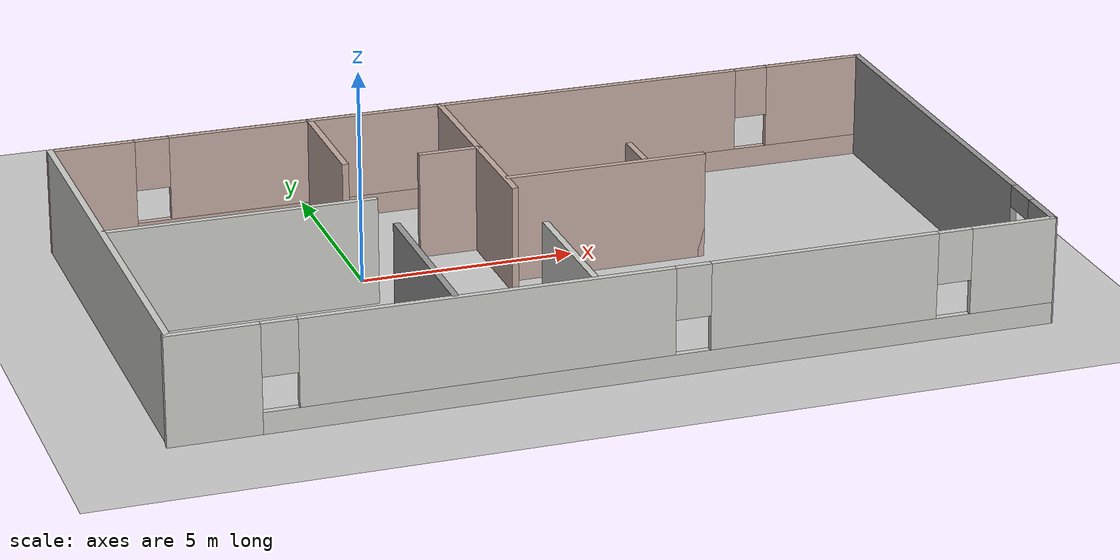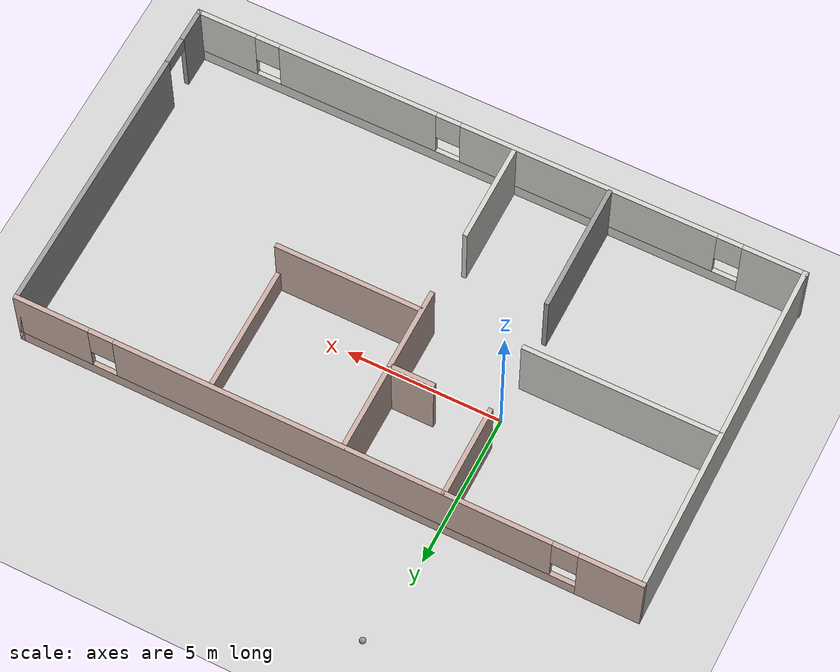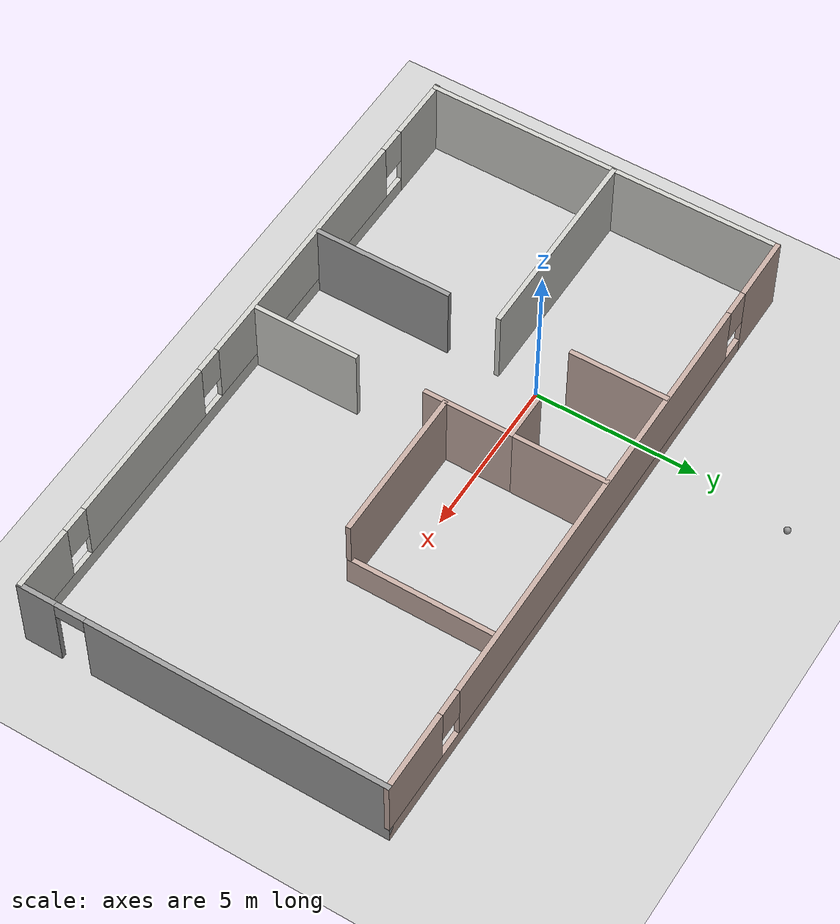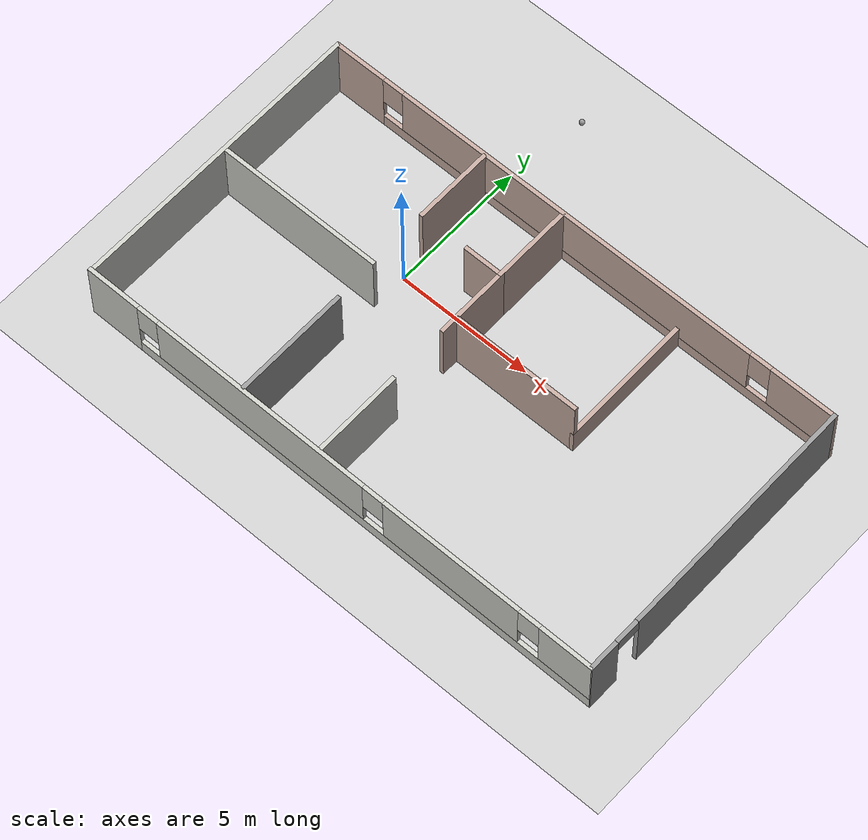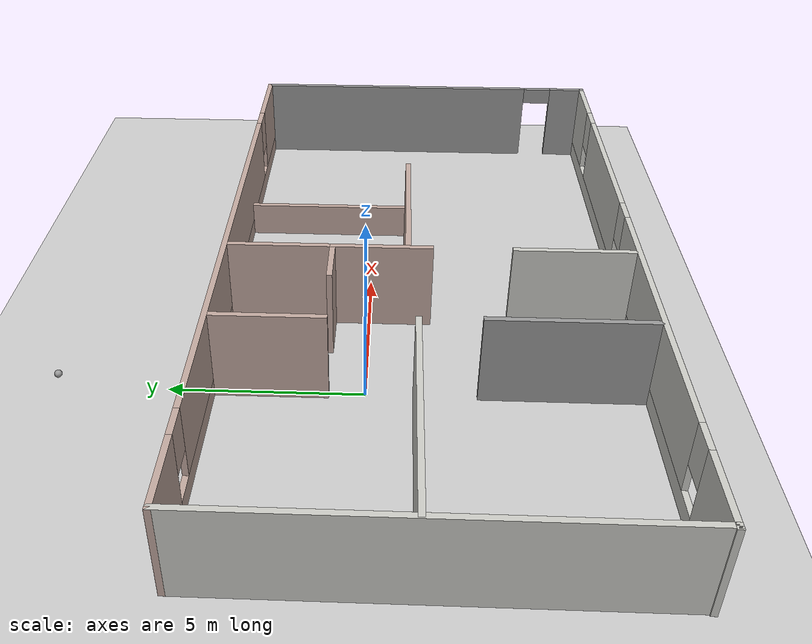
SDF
<sdf version="1.6">
 <world name="default">
  <model name="ground_plane">
   <static>1</static>
   <link name="link">
    <collision name="collision">
     <geometry><plane><normal>0 0 1</normal><size>100 100</size></plane></geometry>
     <surface><friction><ode><mu>100</mu><mu2>50</mu2></ode></friction></surface>
    </collision>
    <visual name="visual">
     <cast_shadows>0</cast_shadows>
     <geometry><plane><normal>0 0 1</normal><size>100 100</size></plane></geometry>
     <material>
      <script><uri>file://media/materials/scripts/gazebo.material</uri><name>Gazebo/Grey</name></script>
     </material>
    </visual>
   </link>
  </model>
  <model name="Building1">
   <pose>3.71092 -1.61304 0 0 -0 0</pose>
   <link name="Wall_0">
    <collision name="Wall_0_Collision">
     <geometry><box><size>11.1055 0.15 2.5</size></box></geometry>
     <pose>0 0 1.25 0 -0 0</pose>
    </collision>
    <visual name="Wall_0_Visual">
     <pose>0 0 1.25 0 -0 0</pose>
     <geometry><box><size>11.1055 0.15 2.5</size></box></geometry>
     <material>
      <script><uri>file://media/materials/scripts/gazebo.material</uri><name>Gazebo/CeilingTiled</name></script>
      <ambient>1 1 1 1</ambient>
     </material>
     <meta><layer>0</layer></meta>
    </visual>
    <pose>-9.90728 -5.4e-05 0 0 0 -1.5708</pose>
   </link>
   <link name="Wall_1">
    <pose>-0.01759 -5.47777 0 0 -0 5e-06</pose>
    <visual name="Wall_1_Visual_0">
     <pose>-8.96838 0 1.25 0 -0 0</pose>
     <geometry><box><size>2.06298 0.15 2.5</size></box></geometry>
     <material>
      <script><uri>file://media/materials/scripts/gazebo.material</uri><name>Gazebo/CeilingTiled</name></script>
      <ambient>1 1 1 1</ambient>
     </material>
     <meta><layer>0</layer></meta>
    </visual>
    <collision name="Wall_1_Collision_0">
     <geometry><box><size>2.06298 0.15 2.5</size></box></geometry>
     <pose>-8.96838 0 1.25 0 -0 0</pose>
    </collision>
    <visual name="Wall_1_Visual_1">
     <pose>1.03149 0 0.25 0 -0 0</pose>
     <geometry><box><size>17.9368 0.15 0.5</size></box></geometry>
     <material>
      <script><uri>file://media/materials/scripts/gazebo.material</uri><name>Gazebo/CeilingTiled</name></script>
      <ambient>1 1 1 1</ambient>
     </material>
     <meta><layer>0</layer></meta>
    </visual>
    <collision name="Wall_1_Collision_1">
     <geometry><box><size>17.9368 0.15 0.5</size></box></geometry>
     <pose>1.03149 0 0.25 0 -0 0</pose>
    </collision>
    <visual name="Wall_1_Visual_2">
     <pose>-2.98124 0 1.5 0 -0 0</pose>
     <geometry><box><size>8.3113 0.15 2</size></box></geometry>
     <material>
      <script><uri>file://media/materials/scripts/gazebo.material</uri><name>Gazebo/CeilingTiled</name></script>
      <ambient>1 1 1 1</ambient>
     </material>
     <meta><layer>0</layer></meta>
    </visual>
    <collision name="Wall_1_Collision_2">
     <geometry><box><size>8.3113 0.15 2</size></box></geometry>
     <pose>-2.98124 0 1.5 0 -0 0</pose>
    </collision>
    <visual name="Wall_1_Visual_3">
     <pose>4.59979 0 1.5 0 -0 0</pose>
     <geometry><box><size>5.25075 0.15 2</size></box></geometry>
     <material>
      <script><uri>file://media/materials/scripts/gazebo.material</uri><name>Gazebo/CeilingTiled</name></script>
      <ambient>1 1 1 1</ambient>
     </material>
     <meta><layer>0</layer></meta>
    </visual>
    <collision name="Wall_1_Collision_3">
     <geometry><box><size>5.25075 0.15 2</size></box></geometry>
     <pose>4.59979 0 1.5 0 -0 0</pose>
    </collision>
    <visual name="Wall_1_Visual_4">
     <pose>9.01252 0 1.5 0 -0 0</pose>
     <geometry><box><size>1.97471 0.15 2</size></box></geometry>
     <material>
      <script><uri>file://media/materials/scripts/gazebo.material</uri><name>Gazebo/CeilingTiled</name></script>
      <ambient>1 1 1 1</ambient>
     </material>
     <meta><layer>0</layer></meta>
    </visual>
    <collision name="Wall_1_Collision_4">
     <geometry><box><size>1.97471 0.15 2</size></box></geometry>
     <pose>9.01252 0 1.5 0 -0 0</pose>
    </collision>
    <visual name="Wall_1_Visual_5">
     <pose>-7.53689 0 1.9 0 -0 0</pose>
     <geometry><box><size>0.8 0.15 1.2</size></box></geometry>
     <material>
      <script><uri>file://media/materials/scripts/gazebo.material</uri><name>Gazebo/CeilingTiled</name></script>
      <ambient>1 1 1 1</ambient>
     </material>
     <meta><layer>0</layer></meta>
    </visual>
    <collision name="Wall_1_Collision_5">
     <geometry><box><size>0.8 0.15 1.2</size></box></geometry>
     <pose>-7.53689 0 1.9 0 -0 0</pose>
    </collision>
    <visual name="Wall_1_Visual_6">
     <pose>1.57441 0 1.9 0 -0 0</pose>
     <geometry><box><size>0.8 0.15 1.2</size></box></geometry>
     <material>
      <script><uri>file://media/materials/scripts/gazebo.material</uri><name>Gazebo/CeilingTiled</name></script>
      <ambient>1 1 1 1</ambient>
     </material>
     <meta><layer>0</layer></meta>
    </visual>
    <collision name="Wall_1_Collision_6">
     <geometry><box><size>0.8 0.15 1.2</size></box></geometry>
     <pose>1.57441 0 1.9 0 -0 0</pose>
    </collision>
    <visual name="Wall_1_Visual_7">
     <pose>7.62516 0 1.9 0 -0 0</pose>
     <geometry><box><size>0.8 0.15 1.2</size></box></geometry>
     <material>
      <script><uri>file://media/materials/scripts/gazebo.material</uri><name>Gazebo/CeilingTiled</name></script>
      <ambient>1 1 1 1</ambient>
     </material>
     <meta><layer>0</layer></meta>
    </visual>
    <collision name="Wall_1_Collision_7">
     <geometry><box><size>0.8 0.15 1.2</size></box></geometry>
     <pose>7.62516 0 1.9 0 -0 0</pose>
    </collision>
   </link>
   <link name="Wall_10">
    <collision name="Wall_10_Collision">
     <geometry><box><size>4.25 0.15 2.5</size></box></geometry>
     <pose>0 0 1.25 0 -0 0</pose>
    </collision>
    <visual name="Wall_10_Visual">
     <pose>0 0 1.25 0 -0 0</pose>
     <geometry><box><size>4.25 0.15 2.5</size></box></geometry>
     <material>
      <script><uri>file://media/materials/scripts/gazebo.material</uri><name>Gazebo/Grey</name></script>
      <ambient>1 1 1 1</ambient>
     </material>
     <meta><layer>0</layer></meta>
    </visual>
    <pose>-3.71999 -3.32433 0 0 0 -1.5708</pose>
   </link>
   <link name="Wall_12">
    <collision name="Wall_12_Collision">
     <geometry><box><size>3 0.15 2.5</size></box></geometry>
     <pose>0 0 1.25 0 -0 0</pose>
    </collision>
    <visual name="Wall_12_Visual">
     <pose>0 0 1.25 0 -0 0</pose>
     <geometry><box><size>3 0.15 2.5</size></box></geometry>
     <material>
      <script><uri>file://media/materials/scripts/gazebo.material</uri><name>Gazebo/Grey</name></script>
      <ambient>0.760784 0.662745 0.627451 1</ambient>
     </material>
     <meta><layer>0</layer></meta>
    </visual>
    <pose>-0.624261 4.01982 0 0 0 -1.5708</pose>
   </link>
   <link name="Wall_13">
    <collision name="Wall_13_Collision">
     <geometry><box><size>1.5 0.15 2.5</size></box></geometry>
     <pose>0 0 1.25 0 -0 0</pose>
    </collision>
    <visual name="Wall_13_Visual">
     <pose>0 0 1.25 0 -0 0</pose>
     <geometry><box><size>1.5 0.15 2.5</size></box></geometry>
     <material>
      <script><uri>file://media/materials/scripts/gazebo.material</uri><name>Gazebo/Grey</name></script>
      <ambient>0.760784 0.662745 0.627451 1</ambient>
     </material>
     <meta><layer>0</layer></meta>
    </visual>
    <pose>-1.29926 2.59482 0 0 -0 3.14159</pose>
   </link>
   <link name="Wall_15">
    <collision name="Wall_15_Collision">
     <geometry><box><size>2.75 0.15 2.5</size></box></geometry>
     <pose>0 0 1.25 0 -0 0</pose>
    </collision>
    <visual name="Wall_15_Visual">
     <pose>0 0 1.25 0 -0 0</pose>
     <geometry><box><size>2.75 0.15 2.5</size></box></geometry>
     <material>
      <script><uri>file://media/materials/scripts/gazebo.material</uri><name>Gazebo/Grey</name></script>
      <ambient>0.760784 0.662745 0.627451 1</ambient>
     </material>
     <meta><layer>0</layer></meta>
    </visual>
    <pose>-0.624261 1.29482 0 0 0 -1.5708</pose>
   </link>
   <link name="Wall_17">
    <collision name="Wall_17_Collision">
     <geometry><box><size>3.25 0.15 2.5</size></box></geometry>
     <pose>0 0 1.25 0 -0 0</pose>
    </collision>
    <visual name="Wall_17_Visual">
     <pose>0 0 1.25 0 -0 0</pose>
     <geometry><box><size>3.25 0.15 2.5</size></box></geometry>
     <material>
      <script><uri>file://media/materials/scripts/gazebo.material</uri><name>Gazebo/CeilingTiled</name></script>
      <ambient>1 1 1 1</ambient>
     </material>
     <meta><layer>0</layer></meta>
    </visual>
    <pose>-0.624261 -3.78915 0 0 0 -1.5708</pose>
   </link>
   <link name="Wall_19">
    <collision name="Wall_19_Collision">
     <geometry><box><size>4.75 0.15 2.5</size></box></geometry>
     <pose>0 0 1.25 0 -0 0</pose>
    </collision>
    <visual name="Wall_19_Visual">
     <pose>0 0 1.25 0 -0 0</pose>
     <geometry><box><size>4.75 0.15 2.5</size></box></geometry>
     <material>
      <script><uri>file://media/materials/scripts/gazebo.material</uri><name>Gazebo/Grey</name></script>
      <ambient>0.760784 0.662745 0.627451 1</ambient>
     </material>
     <meta><layer>0</layer></meta>
    </visual>
    <pose>1.74646 0.589822 0 0 -0 0</pose>
   </link>
   <link name="Wall_2">
    <pose>9.94246 5.4e-05 0 0 -0 1.5708</pose>
    <visual name="Wall_2_Visual_0">
     <pose>-4.96793 0 1.25 0 -0 0</pose>
     <geometry><box><size>1.16968 0.15 2.5</size></box></geometry>
     <material>
      <script><uri>file://media/materials/scripts/gazebo.material</uri><name>Gazebo/Grey</name></script>
      <ambient>1 1 1 1</ambient>
     </material>
     <meta><layer>0</layer></meta>
    </visual>
    <collision name="Wall_2_Collision_0">
     <geometry><box><size>1.16968 0.15 2.5</size></box></geometry>
     <pose>-4.96793 0 1.25 0 -0 0</pose>
    </collision>
    <visual name="Wall_2_Visual_1">
     <pose>1.03484 0 1.25 0 -0 0</pose>
     <geometry><box><size>9.03585 0.15 2.5</size></box></geometry>
     <material>
      <script><uri>file://media/materials/scripts/gazebo.material</uri><name>Gazebo/Grey</name></script>
      <ambient>1 1 1 1</ambient>
     </material>
     <meta><layer>0</layer></meta>
    </visual>
    <collision name="Wall_2_Collision_1">
     <geometry><box><size>9.03585 0.15 2.5</size></box></geometry>
     <pose>1.03484 0 1.25 0 -0 0</pose>
    </collision>
    <visual name="Wall_2_Visual_2">
     <pose>-3.93309 0 2.25 0 -0 0</pose>
     <geometry><box><size>0.9 0.15 0.5</size></box></geometry>
     <material>
      <script><uri>file://media/materials/scripts/gazebo.material</uri><name>Gazebo/Grey</name></script>
      <ambient>1 1 1 1</ambient>
     </material>
     <meta><layer>0</layer></meta>
    </visual>
    <collision name="Wall_2_Collision_2">
     <geometry><box><size>0.9 0.15 0.5</size></box></geometry>
     <pose>-3.93309 0 2.25 0 -0 0</pose>
    </collision>
   </link>
   <link name="Wall_20">
    <collision name="Wall_20_Collision">
     <geometry><box><size>5 0.15 1</size></box></geometry>
     <pose>0 0 0.5 0 -0 0</pose>
    </collision>
    <visual name="Wall_20_Visual">
     <pose>0 0 0.5 0 -0 0</pose>
     <geometry><box><size>5 0.15 1</size></box></geometry>
     <material>
      <script><uri>file://media/materials/scripts/gazebo.material</uri><name>Gazebo/Grey</name></script>
      <ambient>0.760784 0.662745 0.627451 1</ambient>
     </material>
     <meta><layer>0</layer></meta>
    </visual>
    <pose>4.04646 3.01482 0 0 -0 1.5708</pose>
   </link>
   <link name="Wall_4">
    <pose>0.017589 5.47777 0 0 -0 5e-06</pose>
    <visual name="Wall_4_Visual_0">
     <pose>-8.98597 0 1.25 0 -0 0</pose>
     <geometry><box><size>2.0278 0.15 2.5</size></box></geometry>
     <material>
      <script><uri>file://media/materials/scripts/gazebo.material</uri><name>Gazebo/Grey</name></script>
      <ambient>0.760784 0.662745 0.627451 1</ambient>
     </material>
     <meta><layer>0</layer></meta>
    </visual>
    <collision name="Wall_4_Collision_0">
     <geometry><box><size>2.0278 0.15 2.5</size></box></geometry>
     <pose>-8.98597 0 1.25 0 -0 0</pose>
    </collision>
    <visual name="Wall_4_Visual_1">
     <pose>1.0139 0 0.25 0 -0 0</pose>
     <geometry><box><size>17.9719 0.15 0.5</size></box></geometry>
     <material>
      <script><uri>file://media/materials/scripts/gazebo.material</uri><name>Gazebo/Grey</name></script>
      <ambient>0.760784 0.662745 0.627451 1</ambient>
     </material>
     <meta><layer>0</layer></meta>
    </visual>
    <collision name="Wall_4_Collision_1">
     <geometry><box><size>17.9719 0.15 0.5</size></box></geometry>
     <pose>1.0139 0 0.25 0 -0 0</pose>
    </collision>
    <visual name="Wall_4_Visual_2">
     <pose>-0.219705 0 1.5 0 -0 0</pose>
     <geometry><box><size>13.9047 0.15 2</size></box></geometry>
     <material>
      <script><uri>file://media/materials/scripts/gazebo.material</uri><name>Gazebo/Grey</name></script>
      <ambient>0.760784 0.662745 0.627451 1</ambient>
     </material>
     <meta><layer>0</layer></meta>
    </visual>
    <collision name="Wall_4_Collision_2">
     <geometry><box><size>13.9047 0.15 2</size></box></geometry>
     <pose>-0.219705 0 1.5 0 -0 0</pose>
    </collision>
    <visual name="Wall_4_Visual_3">
     <pose>8.76626 0 1.5 0 -0 0</pose>
     <geometry><box><size>2.46721 0.15 2</size></box></geometry>
     <material>
      <script><uri>file://media/materials/scripts/gazebo.material</uri><name>Gazebo/Grey</name></script>
      <ambient>0.760784 0.662745 0.627451 1</ambient>
     </material>
     <meta><layer>0</layer></meta>
    </visual>
    <collision name="Wall_4_Collision_3">
     <geometry><box><size>2.46721 0.15 2</size></box></geometry>
     <pose>8.76626 0 1.5 0 -0 0</pose>
    </collision>
    <visual name="Wall_4_Visual_4">
     <pose>-7.57207 0 1.9 0 -0 0</pose>
     <geometry><box><size>0.8 0.15 1.2</size></box></geometry>
     <material>
      <script><uri>file://media/materials/scripts/gazebo.material</uri><name>Gazebo/Grey</name></script>
      <ambient>0.760784 0.662745 0.627451 1</ambient>
     </material>
     <meta><layer>0</layer></meta>
    </visual>
    <collision name="Wall_4_Collision_4">
     <geometry><box><size>0.8 0.15 1.2</size></box></geometry>
     <pose>-7.57207 0 1.9 0 -0 0</pose>
    </collision>
    <visual name="Wall_4_Visual_5">
     <pose>7.13266 0 1.9 0 -0 0</pose>
     <geometry><box><size>0.8 0.15 1.2</size></box></geometry>
     <material>
      <script><uri>file://media/materials/scripts/gazebo.material</uri><name>Gazebo/Grey</name></script>
      <ambient>0.760784 0.662745 0.627451 1</ambient>
     </material>
     <meta><layer>0</layer></meta>
    </visual>
    <collision name="Wall_4_Collision_5">
     <geometry><box><size>0.8 0.15 1.2</size></box></geometry>
     <pose>7.13266 0 1.9 0 -0 0</pose>
    </collision>
   </link>
   <link name="Wall_6">
    <collision name="Wall_6_Collision">
     <geometry><box><size>3 0.15 2.5</size></box></geometry>
     <pose>0 0 1.25 0 -0 0</pose>
    </collision>
    <visual name="Wall_6_Visual">
     <pose>0 0 1.25 0 -0 0</pose>
     <geometry><box><size>3 0.15 2.5</size></box></geometry>
     <material>
      <script><uri>file://media/materials/scripts/gazebo.material</uri><name>Gazebo/Grey</name></script>
      <ambient>0.760784 0.662745 0.627451 1</ambient>
     </material>
     <meta><layer>0</layer></meta>
    </visual>
    <pose>-3.79035 4.01982 0 0 0 -1.5708</pose>
   </link>
   <link name="Wall_8">
    <collision name="Wall_8_Collision">
     <geometry><box><size>6.25 0.15 2.5</size></box></geometry>
     <pose>0 0 1.25 0 -0 0</pose>
    </collision>
    <visual name="Wall_8_Visual">
     <pose>0 0 1.25 0 -0 0</pose>
     <geometry><box><size>6.25 0.15 2.5</size></box></geometry>
     <material>
      <script><uri>file://media/materials/scripts/gazebo.material</uri><name>Gazebo/CeilingTiled</name></script>
      <ambient>1 1 1 1</ambient>
     </material>
     <meta><layer>0</layer></meta>
    </visual>
    <pose>-6.82628 0.343897 0 0 -0 0</pose>
   </link>
   <static>1</static>
  </model>
  <model name="my_ball">
   <link name="link_0">
    <inertial>
     <mass>1</mass>
     <inertia><ixx>0.1</ixx><ixy>0</ixy><ixz>0</ixz><iyy>0.1</iyy><iyz>0</iyz><izz>0.1</izz></inertia>
    </inertial>
    <visual name="visual">
     <geometry><sphere><radius>0.1</radius></sphere></geometry>
     <material>
      <lighting>1</lighting>
      <script><uri>file://media/materials/scripts/gazebo.material</uri><name>Gazebo/Grey</name></script>
      <ambient>1 1 1 1</ambient>
      <diffuse>1 1 1 1</diffuse>
      <specular>1 1 1 1</specular>
      <emissive>1 1 1 1</emissive>
      <shader type="vertex"><normal_map>__default__</normal_map></shader>
     </material>
    </visual>
    <collision name="collision">
     <geometry><sphere><radius>0.1</radius></sphere></geometry>
     <surface>
      <friction>
       <ode><mu>1</mu><mu2>1</mu2><fdir1>0 0 0</fdir1><slip1>0</slip1><slip2>0</slip2></ode>
       <torsional>
        <coefficient>1</coefficient>
        <patch_radius>0</patch_radius>
        <surface_radius>0</surface_radius>
        <use_patch_radius>1</use_patch_radius>
        <ode><slip>0</slip></ode>
       </torsional>
      </friction>
      <bounce><restitution_coefficient>0</restitution_coefficient><threshold>1e+06</threshold></bounce>
      <contact>
       <collide_without_contact>0</collide_without_contact>
       <collide_without_contact_bitmask>1</collide_without_contact_bitmask>
       <collide_bitmask>1</collide_bitmask>
       <ode>
        <soft_cfm>0</soft_cfm>
        <soft_erp>0.2</soft_erp>
        <kp>1e+13</kp>
        <kd>1</kd>
        <max_vel>0.01</max_vel>
        <min_depth>0</min_depth>
       </ode>
       <bullet>
        <split_impulse>1</split_impulse>
        <split_impulse_penetration_threshold>-0.01</split_impulse_penetration_threshold>
        <soft_cfm>0</soft_cfm>
        <soft_erp>0.2</soft_erp>
        <kp>1e+13</kp>
        <kd>1</kd>
       </bullet>
      </contact>
     </surface>
    </collision>
   </link>
   <static>0</static>
   <pose>0.391411 7.93899 0.1 0 -0 0</pose>
  </model>
 </world>
</sdf>
